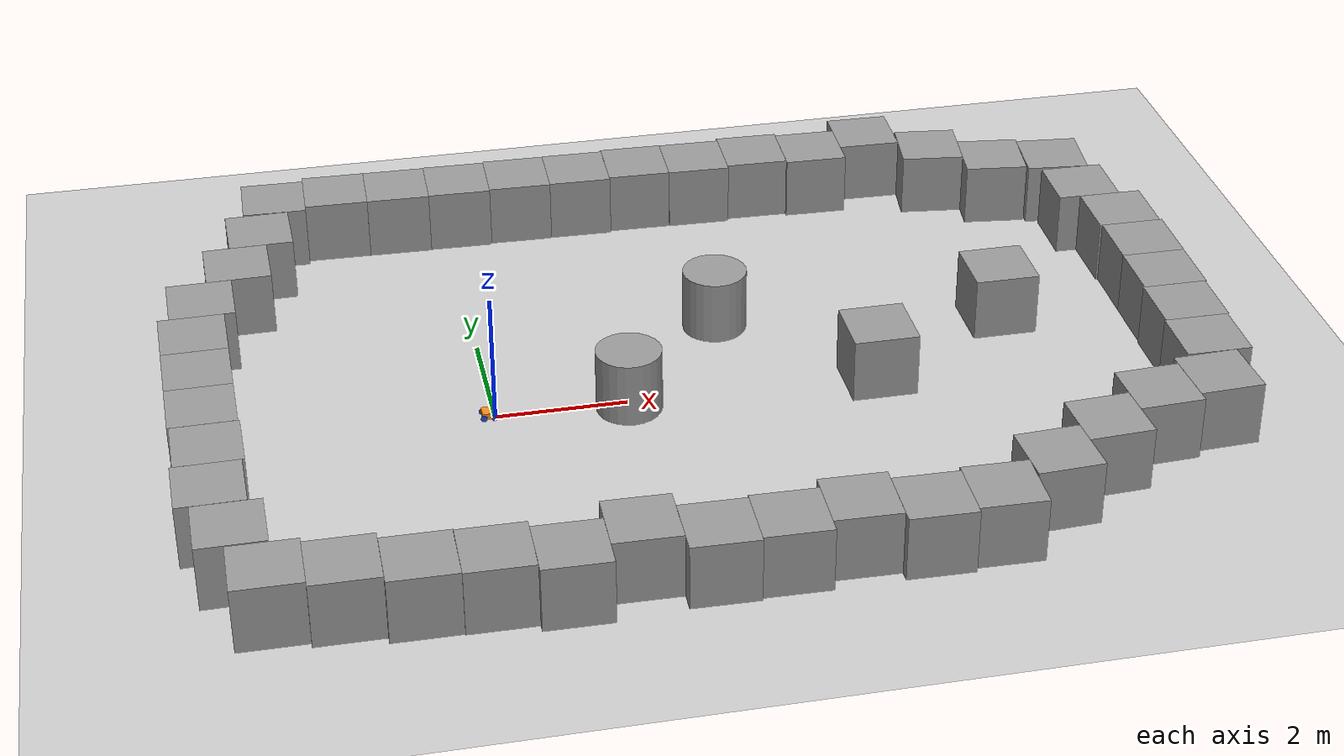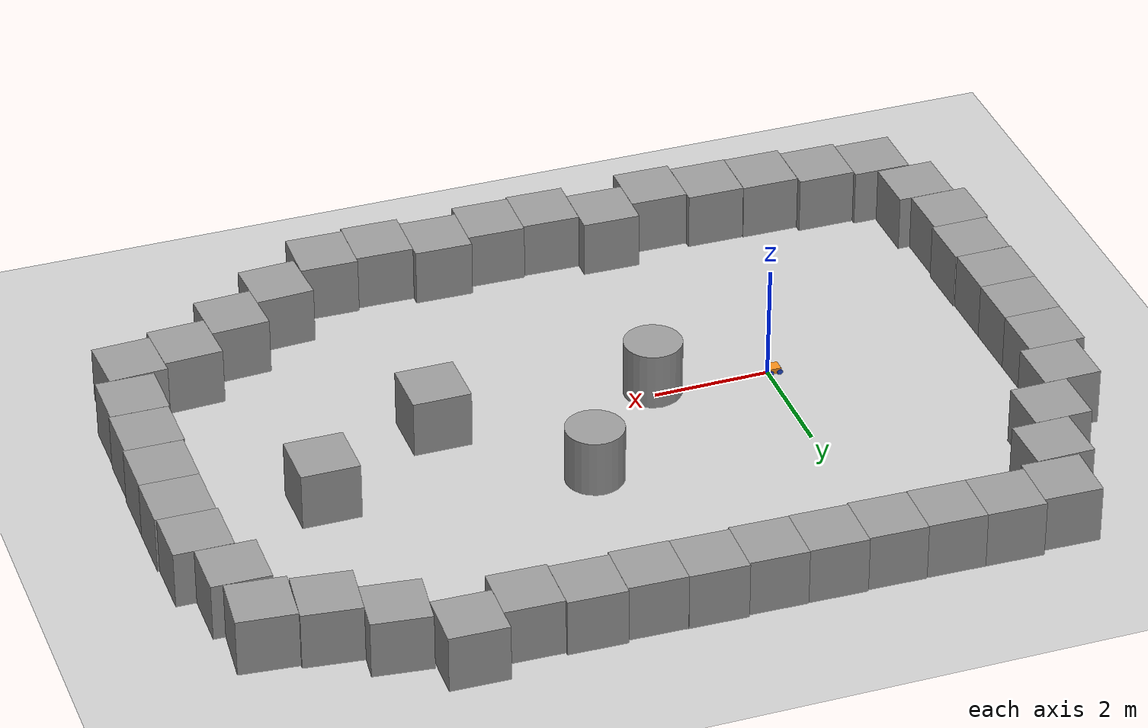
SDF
<sdf version="1.7">
 <world name="default">
  <scene><ambient>0.4 0.4 0.4 1</ambient><background>0.7 0.7 0.7 1</background><shadows>1</shadows></scene>
  <light name="sun" type="directional">
   <pose>0 0 10 0 -0 0</pose>
   <diffuse>0.8 0.8 0.8 1</diffuse>
   <specular>0.2 0.2 0.2 1</specular>
   <attenuation>
    <range>1000</range>
    <constant>0.9</constant>
    <linear>0.01</linear>
    <quadratic>0.001</quadratic>
   </attenuation>
   <direction>-0.5 0.1 -0.9</direction>
   <spot><inner_angle>0</inner_angle><outer_angle>0</outer_angle><falloff>0</falloff></spot>
  </light>
  <model name="ground_plane">
   <static>1</static>
   <link name="link">
    <collision name="collision">
     <geometry><plane><normal>0 0 1</normal><size>100 100</size></plane></geometry>
     <surface>
      <contact><collide_bitmask>65535</collide_bitmask></contact>
      <friction><ode><mu>0.8</mu><mu2>0.6</mu2></ode></friction>
     </surface>
    </collision>
    <visual name="visual">
     <cast_shadows>0</cast_shadows>
     <geometry><plane><normal>0 0 1</normal><size>100 100</size></plane></geometry>
     <material>
      <script><uri>file://media/materials/scripts/gazebo.material</uri><name>Gazebo/Grey</name></script>
     </material>
    </visual>
   </link>
  </model>
  <physics type="ode">
   <real_time_update_rate>1000</real_time_update_rate>
   <max_step_size>0.001</max_step_size>
   <real_time_factor>1</real_time_factor>
   <ode>
    <solver>
     <type>quick</type>
     <iters>150</iters>
     <precon_iters>0</precon_iters>
     <sor>1.4</sor>
     <use_dynamic_moi_rescaling>1</use_dynamic_moi_rescaling>
    </solver>
    <constraints>
     <cfm>1e-05</cfm>
     <erp>0.2</erp>
     <contact_max_correcting_vel>2000</contact_max_correcting_vel>
     <contact_surface_layer>0.01</contact_surface_layer>
    </constraints>
   </ode>
  </physics>
  <gravity>0 0 -9.8</gravity>
  <magnetic_field>6e-06 2.3e-05 -4.2e-05</magnetic_field>
  <atmosphere type="adiabatic"/>
  <audio><device>default</device></audio>
  <spherical_coordinates>
   <surface_model>EARTH_WGS84</surface_model>
   <latitude_deg>0</latitude_deg>
   <longitude_deg>0</longitude_deg>
   <elevation>0</elevation>
   <heading_deg>0</heading_deg>
  </spherical_coordinates>
  <model name="ekf_slam_robot">
   <link name="base_link">
    <inertial>
     <pose>1e-06 0 1e-06 0 -0 0</pose>
     <mass>5.6001</mass>
     <inertia>
      <ixx>0.0233336</ixx>
      <ixy>0</ixy>
      <ixz>-2.7037e-07</ixz>
      <iyy>0.0233339</iyy>
      <iyz>0</iyz>
      <izz>0.0373336</izz>
     </inertia>
    </inertial>
    <collision name="base_link_fixed_joint_lump__base_collision_collision">
     <geometry><box><size>0.2 0.2 0.1</size></box></geometry>
    </collision>
    <collision name="base_link_fixed_joint_lump__lidar_1_collision_collision_1">
     <pose>0.05 0 0.0515 0 -0 0</pose>
     <geometry><cylinder><length>0.003</length><radius>0.005</radius></cylinder></geometry>
    </collision>
    <visual name="base_link_visual">
     <geometry><box><size>0.2 0.2 0.1</size></box></geometry>
     <material>
      <script><name>Gazebo/Orange</name><uri>file://media/materials/scripts/gazebo.material</uri></script>
     </material>
    </visual>
    <visual name="base_link_fixed_joint_lump__lidar_1_visual_visual_1">
     <pose>0.05 0 0.0515 0 -0 0</pose>
     <geometry><cylinder><length>0.003</length><radius>0.005</radius></cylinder></geometry>
     <material>
      <script><name>Gazebo/Blue</name><uri>file://media/materials/scripts/gazebo.material</uri></script>
     </material>
    </visual>
    <sensor name="lidar_1" type="ray">
     <visualize>1</visualize>
     <update_rate>5</update_rate>
     <ray>
      <scan>
       <horizontal>
        <samples>180</samples>
        <resolution>1</resolution>
        <min_angle>-1.5708</min_angle>
        <max_angle>1.5708</max_angle>
       </horizontal>
       <vertical><samples>1</samples><min_angle>0</min_angle><max_angle>0</max_angle></vertical>
      </scan>
      <range><min>0.01</min><max>2</max><resolution>0.01</resolution></range>
     </ray>
     <plugin name="lidar_controller" filename="libgazebo_ros_ray_sensor.so">
      <topic_name>/diff_drive_robot/laser_1/scan</topic_name>
      <frame_name>lidar_1</frame_name>
      <output_type>sensor_msgs/LaserScan</output_type>
     </plugin>
     <pose>0.05 0 0.0515 0 -0 0</pose>
    </sensor>
   </link>
   <joint name="wheel_left_joint" type="revolute">
    <pose relative_to="base_link">0.08 0.105 -0.03 0 -0 0</pose>
    <parent>base_link</parent>
    <child>wheel_left</child>
    <axis>
     <xyz>0 1 0</xyz>
     <limit><effort>100</effort><velocity>50</velocity><lower>-1e+16</lower><upper>1e+16</upper></limit>
     <dynamics><spring_reference>0</spring_reference><spring_stiffness>0</spring_stiffness></dynamics>
    </axis>
   </joint>
   <link name="wheel_left">
    <pose relative_to="wheel_left_joint">0 0 0 0 -0 0</pose>
    <inertial>
     <pose>0 0 0 1.57079 1.57079 3.14159</pose>
     <mass>0.035</mass>
     <inertia>
      <ixx>2.21667e-05</ixx>
      <ixy>0</ixy>
      <ixz>0</ixz>
      <iyy>2.21667e-05</iyy>
      <iyz>0</iyz>
      <izz>4.375e-05</izz>
     </inertia>
    </inertial>
    <collision name="wheel_left_fixed_joint_lump__wheel_collision_collision">
     <pose>0 0 0 1.57079 1.57079 3.14159</pose>
     <geometry><cylinder><length>0.01</length><radius>0.05</radius></cylinder></geometry>
    </collision>
    <visual name="wheel_left_visual_visual">
     <pose>0 0 0 1.57079 1.57079 3.14159</pose>
     <geometry><cylinder><length>0.01</length><radius>0.05</radius></cylinder></geometry>
     <material>
      <script><name>Gazebo/Blue</name><uri>file://media/materials/scripts/gazebo.material</uri></script>
     </material>
    </visual>
   </link>
   <joint name="wheel_left_np_joint" type="revolute">
    <pose relative_to="base_link">-0.08 0.105 -0.03 0 -0 0</pose>
    <parent>base_link</parent>
    <child>wheel_left_np</child>
    <axis>
     <xyz>0 1 0</xyz>
     <limit><effort>100</effort><velocity>50</velocity><lower>-1e+16</lower><upper>1e+16</upper></limit>
     <dynamics><spring_reference>0</spring_reference><spring_stiffness>0</spring_stiffness></dynamics>
    </axis>
   </joint>
   <link name="wheel_left_np">
    <pose relative_to="wheel_left_np_joint">0 0 0 0 -0 0</pose>
    <inertial>
     <pose>0 0 0 1.57079 1.57079 3.14159</pose>
     <mass>0.035</mass>
     <inertia>
      <ixx>2.21667e-05</ixx>
      <ixy>0</ixy>
      <ixz>0</ixz>
      <iyy>2.21667e-05</iyy>
      <iyz>0</iyz>
      <izz>4.375e-05</izz>
     </inertia>
    </inertial>
    <collision name="wheel_left_np_fixed_joint_lump__wheel_collision_collision">
     <pose>0 0 0 1.57079 1.57079 3.14159</pose>
     <geometry><cylinder><length>0.01</length><radius>0.05</radius></cylinder></geometry>
    </collision>
    <visual name="wheel_left_np_visual_visual">
     <pose>0 0 0 1.57079 1.57079 3.14159</pose>
     <geometry><cylinder><length>0.01</length><radius>0.05</radius></cylinder></geometry>
     <material>
      <script><name>Gazebo/Blue</name><uri>file://media/materials/scripts/gazebo.material</uri></script>
     </material>
    </visual>
   </link>
   <joint name="wheel_right_joint" type="revolute">
    <pose relative_to="base_link">0.08 -0.105 -0.03 0 -0 0</pose>
    <parent>base_link</parent>
    <child>wheel_right</child>
    <axis>
     <xyz>0 1 0</xyz>
     <limit><effort>100</effort><velocity>50</velocity><lower>-1e+16</lower><upper>1e+16</upper></limit>
     <dynamics><spring_reference>0</spring_reference><spring_stiffness>0</spring_stiffness></dynamics>
    </axis>
   </joint>
   <link name="wheel_right">
    <pose relative_to="wheel_right_joint">0 0 0 0 -0 0</pose>
    <inertial>
     <pose>0 0 0 1.57079 1.57079 3.14159</pose>
     <mass>0.035</mass>
     <inertia>
      <ixx>2.21667e-05</ixx>
      <ixy>0</ixy>
      <ixz>0</ixz>
      <iyy>2.21667e-05</iyy>
      <iyz>0</iyz>
      <izz>4.375e-05</izz>
     </inertia>
    </inertial>
    <collision name="wheel_right_fixed_joint_lump__wheel_collision_collision">
     <pose>0 0 0 1.57079 1.57079 3.14159</pose>
     <geometry><cylinder><length>0.01</length><radius>0.05</radius></cylinder></geometry>
    </collision>
    <visual name="wheel_right_visual_visual">
     <pose>0 0 0 1.57079 1.57079 3.14159</pose>
     <geometry><cylinder><length>0.01</length><radius>0.05</radius></cylinder></geometry>
     <material>
      <script><name>Gazebo/Blue</name><uri>file://media/materials/scripts/gazebo.material</uri></script>
     </material>
    </visual>
   </link>
   <joint name="wheel_right_np_joint" type="revolute">
    <pose relative_to="base_link">-0.08 -0.105 -0.03 0 -0 0</pose>
    <parent>base_link</parent>
    <child>wheel_right_np</child>
    <axis>
     <xyz>0 1 0</xyz>
     <limit><effort>100</effort><velocity>50</velocity><lower>-1e+16</lower><upper>1e+16</upper></limit>
     <dynamics><spring_reference>0</spring_reference><spring_stiffness>0</spring_stiffness></dynamics>
    </axis>
   </joint>
   <link name="wheel_right_np">
    <pose relative_to="wheel_right_np_joint">0 0 0 0 -0 0</pose>
    <inertial>
     <pose>0 0 0 1.57079 1.57079 3.14159</pose>
     <mass>0.035</mass>
     <inertia>
      <ixx>2.21667e-05</ixx>
      <ixy>0</ixy>
      <ixz>0</ixz>
      <iyy>2.21667e-05</iyy>
      <iyz>0</iyz>
      <izz>4.375e-05</izz>
     </inertia>
    </inertial>
    <collision name="wheel_right_np_fixed_joint_lump__wheel_collision_collision">
     <pose>0 0 0 1.57079 1.57079 3.14159</pose>
     <geometry><cylinder><length>0.01</length><radius>0.05</radius></cylinder></geometry>
    </collision>
    <visual name="wheel_right_np_visual_visual">
     <pose>0 0 0 1.57079 1.57079 3.14159</pose>
     <geometry><cylinder><length>0.01</length><radius>0.05</radius></cylinder></geometry>
     <material>
      <script><name>Gazebo/Blue</name><uri>file://media/materials/scripts/gazebo.material</uri></script>
     </material>
    </visual>
   </link>
   <static>0</static>
   <plugin name="differential_drive_controller" filename="libgazebo_ros_diff_drive.so">
    <legacy_mode>0</legacy_mode>
    <always_on>1</always_on>
    <update_rate>30</update_rate>
    <left_joint>wheel_left_joint</left_joint>
    <right_joint>wheel_right_joint</right_joint>
    <wheel_separation>0.21</wheel_separation>
    <wheel_diameter>0.1</wheel_diameter>
    <wheel_torque>100</wheel_torque>
    <command_topic>cmd_vel</command_topic>
    <odometry_topic>odom</odometry_topic>
    <odometry_frame>odom</odometry_frame>
    <robot_base_frame>base_link</robot_base_frame>
   </plugin>
   <pose>-0.09566 0.011739 0.080003 0 -0 0.009276</pose>
  </model>
  <model name="unit_cylinder">
   <pose>2.00389 -0.137042 0.5 0 -0 0</pose>
   <link name="link">
    <inertial>
     <mass>1</mass>
     <inertia><ixx>0.145833</ixx><ixy>0</ixy><ixz>0</ixz><iyy>0.145833</iyy><iyz>0</iyz><izz>0.125</izz></inertia>
    </inertial>
    <collision name="collision">
     <geometry><cylinder><radius>0.5</radius><length>1</length></cylinder></geometry>
    </collision>
    <visual name="visual">
     <geometry><cylinder><radius>0.5</radius><length>1</length></cylinder></geometry>
     <material>
      <script><name>Gazebo/Grey</name><uri>file://media/materials/scripts/gazebo.material</uri></script>
     </material>
    </visual>
   </link>
  </model>
  <model name="unit_cylinder_0">
   <pose>3.74474 1.90178 0.5 0 -0 0</pose>
   <link name="link">
    <inertial>
     <mass>1</mass>
     <inertia><ixx>0.145833</ixx><ixy>0</ixy><ixz>0</ixz><iyy>0.145833</iyy><iyz>0</iyz><izz>0.125</izz></inertia>
    </inertial>
    <collision name="collision">
     <geometry><cylinder><radius>0.5</radius><length>1</length></cylinder></geometry>
    </collision>
    <visual name="visual">
     <geometry><cylinder><radius>0.5</radius><length>1</length></cylinder></geometry>
     <material>
      <script><name>Gazebo/Grey</name><uri>file://media/materials/scripts/gazebo.material</uri></script>
     </material>
    </visual>
   </link>
  </model>
  <model name="unit_box">
   <pose>5.82216 -0.163796 0.5 0 -0 0</pose>
   <link name="link">
    <inertial>
     <mass>1</mass>
     <inertia>
      <ixx>0.166667</ixx>
      <ixy>0</ixy>
      <ixz>0</ixz>
      <iyy>0.166667</iyy>
      <iyz>0</iyz>
      <izz>0.166667</izz>
     </inertia>
    </inertial>
    <collision name="collision"><geometry><box><size>1 1 1</size></box></geometry></collision>
    <visual name="visual">
     <geometry><box><size>1 1 1</size></box></geometry>
     <material>
      <script><name>Gazebo/Grey</name><uri>file://media/materials/scripts/gazebo.material</uri></script>
     </material>
    </visual>
   </link>
  </model>
  <model name="unit_box_0">
   <pose>8.12472 1.18243 0.5 0 -0 0</pose>
   <link name="link">
    <inertial>
     <mass>1</mass>
     <inertia>
      <ixx>0.166667</ixx>
      <ixy>0</ixy>
      <ixz>0</ixz>
      <iyy>0.166667</iyy>
      <iyz>0</iyz>
      <izz>0.166667</izz>
     </inertia>
    </inertial>
    <collision name="collision"><geometry><box><size>1 1 1</size></box></geometry></collision>
    <visual name="visual">
     <geometry><box><size>1 1 1</size></box></geometry>
     <material>
      <script><name>Gazebo/Grey</name><uri>file://media/materials/scripts/gazebo.material</uri></script>
     </material>
    </visual>
   </link>
  </model>
  <model name="unit_box_1">
   <pose>7.21824 6.01141 0.5 0 0 -0.025418</pose>
   <link name="link">
    <inertial>
     <mass>1</mass>
     <inertia>
      <ixx>0.166667</ixx>
      <ixy>0</ixy>
      <ixz>0</ixz>
      <iyy>0.166667</iyy>
      <iyz>0</iyz>
      <izz>0.166667</izz>
     </inertia>
    </inertial>
    <collision name="collision"><geometry><box><size>1 1 1</size></box></geometry></collision>
    <visual name="visual">
     <geometry><box><size>1 1 1</size></box></geometry>
     <material>
      <script><name>Gazebo/Grey</name><uri>file://media/materials/scripts/gazebo.material</uri></script>
     </material>
    </visual>
   </link>
  </model>
  <model name="unit_box_2">
   <pose>6.20887 5.66023 0.5 0 -0 -0.025624</pose>
   <link name="link">
    <inertial>
     <mass>1</mass>
     <inertia>
      <ixx>0.166667</ixx>
      <ixy>0</ixy>
      <ixz>0</ixz>
      <iyy>0.166667</iyy>
      <iyz>0</iyz>
      <izz>0.166667</izz>
     </inertia>
    </inertial>
    <collision name="collision"><geometry><box><size>1 1 1</size></box></geometry></collision>
    <visual name="visual">
     <geometry><box><size>1 1 1</size></box></geometry>
     <material>
      <script><name>Gazebo/Grey</name><uri>file://media/materials/scripts/gazebo.material</uri></script>
     </material>
    </visual>
   </link>
  </model>
  <model name="unit_box_3">
   <pose>5.21009 5.74576 0.5 0 -0 -0.026887</pose>
   <link name="link">
    <inertial>
     <mass>1</mass>
     <inertia>
      <ixx>0.166667</ixx>
      <ixy>0</ixy>
      <ixz>0</ixz>
      <iyy>0.166667</iyy>
      <iyz>0</iyz>
      <izz>0.166667</izz>
     </inertia>
    </inertial>
    <collision name="collision"><geometry><box><size>1 1 1</size></box></geometry></collision>
    <visual name="visual">
     <geometry><box><size>1 1 1</size></box></geometry>
     <material>
      <script><name>Gazebo/Grey</name><uri>file://media/materials/scripts/gazebo.material</uri></script>
     </material>
    </visual>
   </link>
  </model>
  <model name="unit_box_4">
   <pose>4.20838 5.70516 0.5 0 0 -0.026309</pose>
   <link name="link">
    <inertial>
     <mass>1</mass>
     <inertia>
      <ixx>0.166667</ixx>
      <ixy>0</ixy>
      <ixz>0</ixz>
      <iyy>0.166667</iyy>
      <iyz>0</iyz>
      <izz>0.166667</izz>
     </inertia>
    </inertial>
    <collision name="collision"><geometry><box><size>1 1 1</size></box></geometry></collision>
    <visual name="visual">
     <geometry><box><size>1 1 1</size></box></geometry>
     <material>
      <script><name>Gazebo/Grey</name><uri>file://media/materials/scripts/gazebo.material</uri></script>
     </material>
    </visual>
   </link>
  </model>
  <model name="unit_box_5">
   <pose>3.20886 5.73912 0.5 0 -0 -0.026187</pose>
   <link name="link">
    <inertial>
     <mass>1</mass>
     <inertia>
      <ixx>0.166667</ixx>
      <ixy>0</ixy>
      <ixz>0</ixz>
      <iyy>0.166667</iyy>
      <iyz>0</iyz>
      <izz>0.166667</izz>
     </inertia>
    </inertial>
    <collision name="collision"><geometry><box><size>1 1 1</size></box></geometry></collision>
    <visual name="visual">
     <geometry><box><size>1 1 1</size></box></geometry>
     <material>
      <script><name>Gazebo/Grey</name><uri>file://media/materials/scripts/gazebo.material</uri></script>
     </material>
    </visual>
   </link>
  </model>
  <model name="unit_box_6">
   <pose>2.2079 5.71884 0.5 0 0 -0.026004</pose>
   <link name="link">
    <inertial>
     <mass>1</mass>
     <inertia>
      <ixx>0.166667</ixx>
      <ixy>0</ixy>
      <ixz>0</ixz>
      <iyy>0.166667</iyy>
      <iyz>0</iyz>
      <izz>0.166667</izz>
     </inertia>
    </inertial>
    <collision name="collision"><geometry><box><size>1 1 1</size></box></geometry></collision>
    <visual name="visual">
     <geometry><box><size>1 1 1</size></box></geometry>
     <material>
      <script><name>Gazebo/Grey</name><uri>file://media/materials/scripts/gazebo.material</uri></script>
     </material>
    </visual>
   </link>
  </model>
  <model name="unit_box_7">
   <pose>1.20794 5.73331 0.5 0 -0 -0.026004</pose>
   <link name="link">
    <inertial>
     <mass>1</mass>
     <inertia>
      <ixx>0.166667</ixx>
      <ixy>0</ixy>
      <ixz>0</ixz>
      <iyy>0.166667</iyy>
      <iyz>0</iyz>
      <izz>0.166667</izz>
     </inertia>
    </inertial>
    <collision name="collision"><geometry><box><size>1 1 1</size></box></geometry></collision>
    <visual name="visual">
     <geometry><box><size>1 1 1</size></box></geometry>
     <material>
      <script><name>Gazebo/Grey</name><uri>file://media/materials/scripts/gazebo.material</uri></script>
     </material>
    </visual>
   </link>
  </model>
  <model name="unit_box_8">
   <pose>0.207418 5.72644 0.5 0 -0 -0.026003</pose>
   <link name="link">
    <inertial>
     <mass>1</mass>
     <inertia>
      <ixx>0.166667</ixx>
      <ixy>0</ixy>
      <ixz>0</ixz>
      <iyy>0.166667</iyy>
      <iyz>0</iyz>
      <izz>0.166667</izz>
     </inertia>
    </inertial>
    <collision name="collision"><geometry><box><size>1 1 1</size></box></geometry></collision>
    <visual name="visual">
     <geometry><box><size>1 1 1</size></box></geometry>
     <material>
      <script><name>Gazebo/Grey</name><uri>file://media/materials/scripts/gazebo.material</uri></script>
     </material>
    </visual>
   </link>
  </model>
  <model name="unit_box_9">
   <pose>-0.79265 5.73904 0.5 0 0 -0.026107</pose>
   <link name="link">
    <inertial>
     <mass>1</mass>
     <inertia>
      <ixx>0.166667</ixx>
      <ixy>0</ixy>
      <ixz>0</ixz>
      <iyy>0.166667</iyy>
      <iyz>0</iyz>
      <izz>0.166667</izz>
     </inertia>
    </inertial>
    <collision name="collision"><geometry><box><size>1 1 1</size></box></geometry></collision>
    <visual name="visual">
     <geometry><box><size>1 1 1</size></box></geometry>
     <material>
      <script><name>Gazebo/Grey</name><uri>file://media/materials/scripts/gazebo.material</uri></script>
     </material>
    </visual>
   </link>
  </model>
  <model name="unit_box_10">
   <pose>-1.79233 5.76509 0.5 -0 -0 -0.026135</pose>
   <link name="link">
    <inertial>
     <mass>1</mass>
     <inertia>
      <ixx>0.166667</ixx>
      <ixy>0</ixy>
      <ixz>0</ixz>
      <iyy>0.166667</iyy>
      <iyz>0</iyz>
      <izz>0.166667</izz>
     </inertia>
    </inertial>
    <collision name="collision"><geometry><box><size>1 1 1</size></box></geometry></collision>
    <visual name="visual">
     <geometry><box><size>1 1 1</size></box></geometry>
     <material>
      <script><name>Gazebo/Grey</name><uri>file://media/materials/scripts/gazebo.material</uri></script>
     </material>
    </visual>
   </link>
  </model>
  <model name="unit_box_11">
   <pose>-2.79481 5.68365 0.5 0 0 -0.026136</pose>
   <link name="link">
    <inertial>
     <mass>1</mass>
     <inertia>
      <ixx>0.166667</ixx>
      <ixy>0</ixy>
      <ixz>0</ixz>
      <iyy>0.166667</iyy>
      <iyz>0</iyz>
      <izz>0.166667</izz>
     </inertia>
    </inertial>
    <collision name="collision"><geometry><box><size>1 1 1</size></box></geometry></collision>
    <visual name="visual">
     <geometry><box><size>1 1 1</size></box></geometry>
     <material>
      <script><name>Gazebo/Grey</name><uri>file://media/materials/scripts/gazebo.material</uri></script>
     </material>
    </visual>
   </link>
  </model>
  <model name="unit_box_12">
   <pose>-3.09286 4.66512 0.5 0 -0 0.013309</pose>
   <link name="link">
    <inertial>
     <mass>1</mass>
     <inertia>
      <ixx>0.166667</ixx>
      <ixy>0</ixy>
      <ixz>0</ixz>
      <iyy>0.166667</iyy>
      <iyz>0</iyz>
      <izz>0.166667</izz>
     </inertia>
    </inertial>
    <collision name="collision"><geometry><box><size>1 1 1</size></box></geometry></collision>
    <visual name="visual">
     <geometry><box><size>1 1 1</size></box></geometry>
     <material>
      <script><name>Gazebo/Grey</name><uri>file://media/materials/scripts/gazebo.material</uri></script>
     </material>
    </visual>
   </link>
  </model>
  <model name="unit_box_13">
   <pose>-3.50189 3.65867 0.5 0 -0 0.010765</pose>
   <link name="link">
    <inertial>
     <mass>1</mass>
     <inertia>
      <ixx>0.166667</ixx>
      <ixy>0</ixy>
      <ixz>0</ixz>
      <iyy>0.166667</iyy>
      <iyz>0</iyz>
      <izz>0.166667</izz>
     </inertia>
    </inertial>
    <collision name="collision"><geometry><box><size>1 1 1</size></box></geometry></collision>
    <visual name="visual">
     <geometry><box><size>1 1 1</size></box></geometry>
     <material>
      <script><name>Gazebo/Grey</name><uri>file://media/materials/scripts/gazebo.material</uri></script>
     </material>
    </visual>
   </link>
  </model>
  <model name="unit_box_14">
   <pose>-4.11132 2.65121 0.5 0 -0 0.008951</pose>
   <link name="link">
    <inertial>
     <mass>1</mass>
     <inertia>
      <ixx>0.166667</ixx>
      <ixy>0</ixy>
      <ixz>0</ixz>
      <iyy>0.166667</iyy>
      <iyz>0</iyz>
      <izz>0.166667</izz>
     </inertia>
    </inertial>
    <collision name="collision"><geometry><box><size>1 1 1</size></box></geometry></collision>
    <visual name="visual">
     <geometry><box><size>1 1 1</size></box></geometry>
     <material>
      <script><name>Gazebo/Grey</name><uri>file://media/materials/scripts/gazebo.material</uri></script>
     </material>
    </visual>
   </link>
  </model>
  <model name="unit_box_15">
   <pose>8.18723 5.31771 0.5 0 0 -0.119398</pose>
   <link name="link">
    <inertial>
     <mass>1</mass>
     <inertia>
      <ixx>0.166667</ixx>
      <ixy>0</ixy>
      <ixz>0</ixz>
      <iyy>0.166667</iyy>
      <iyz>0</iyz>
      <izz>0.166667</izz>
     </inertia>
    </inertial>
    <collision name="collision"><geometry><box><size>1 1 1</size></box></geometry></collision>
    <visual name="visual">
     <geometry><box><size>1 1 1</size></box></geometry>
     <material>
      <script><name>Gazebo/Grey</name><uri>file://media/materials/scripts/gazebo.material</uri></script>
     </material>
    </visual>
   </link>
  </model>
  <model name="unit_box_16">
   <pose>9.12691 4.75514 0.5 0 0 -0.119395</pose>
   <link name="link">
    <inertial>
     <mass>1</mass>
     <inertia>
      <ixx>0.166667</ixx>
      <ixy>0</ixy>
      <ixz>0</ixz>
      <iyy>0.166667</iyy>
      <iyz>0</iyz>
      <izz>0.166667</izz>
     </inertia>
    </inertial>
    <collision name="collision"><geometry><box><size>1 1 1</size></box></geometry></collision>
    <visual name="visual">
     <geometry><box><size>1 1 1</size></box></geometry>
     <material>
      <script><name>Gazebo/Grey</name><uri>file://media/materials/scripts/gazebo.material</uri></script>
     </material>
    </visual>
   </link>
  </model>
  <model name="unit_box_17">
   <pose>-4.27243 1.64968 0.5 0 -0 0.009008</pose>
   <link name="link">
    <inertial>
     <mass>1</mass>
     <inertia>
      <ixx>0.166667</ixx>
      <ixy>0</ixy>
      <ixz>0</ixz>
      <iyy>0.166667</iyy>
      <iyz>0</iyz>
      <izz>0.166667</izz>
     </inertia>
    </inertial>
    <collision name="collision"><geometry><box><size>1 1 1</size></box></geometry></collision>
    <visual name="visual">
     <geometry><box><size>1 1 1</size></box></geometry>
     <material>
      <script><name>Gazebo/Grey</name><uri>file://media/materials/scripts/gazebo.material</uri></script>
     </material>
    </visual>
   </link>
  </model>
  <model name="unit_box_18">
   <pose>-4.264 0.649504 0.5 0 -0 0.009392</pose>
   <link name="link">
    <inertial>
     <mass>1</mass>
     <inertia>
      <ixx>0.166667</ixx>
      <ixy>0</ixy>
      <ixz>0</ixz>
      <iyy>0.166667</iyy>
      <iyz>0</iyz>
      <izz>0.166667</izz>
     </inertia>
    </inertial>
    <collision name="collision"><geometry><box><size>1 1 1</size></box></geometry></collision>
    <visual name="visual">
     <geometry><box><size>1 1 1</size></box></geometry>
     <material>
      <script><name>Gazebo/Grey</name><uri>file://media/materials/scripts/gazebo.material</uri></script>
     </material>
    </visual>
   </link>
  </model>
  <model name="unit_box_19">
   <pose>-4.25545 -0.35046 0.5 0 -0 0.009392</pose>
   <link name="link">
    <inertial>
     <mass>1</mass>
     <inertia>
      <ixx>0.166667</ixx>
      <ixy>0</ixy>
      <ixz>0</ixz>
      <iyy>0.166667</iyy>
      <iyz>0</iyz>
      <izz>0.166667</izz>
     </inertia>
    </inertial>
    <collision name="collision"><geometry><box><size>1 1 1</size></box></geometry></collision>
    <visual name="visual">
     <geometry><box><size>1 1 1</size></box></geometry>
     <material>
      <script><name>Gazebo/Grey</name><uri>file://media/materials/scripts/gazebo.material</uri></script>
     </material>
    </visual>
   </link>
  </model>
  <model name="unit_box_20">
   <pose>-4.22157 -1.35105 0.5 0 -0 0.011044</pose>
   <link name="link">
    <inertial>
     <mass>1</mass>
     <inertia>
      <ixx>0.166667</ixx>
      <ixy>0</ixy>
      <ixz>0</ixz>
      <iyy>0.166667</iyy>
      <iyz>0</iyz>
      <izz>0.166667</izz>
     </inertia>
    </inertial>
    <collision name="collision"><geometry><box><size>1 1 1</size></box></geometry></collision>
    <visual name="visual">
     <geometry><box><size>1 1 1</size></box></geometry>
     <material>
      <script><name>Gazebo/Grey</name><uri>file://media/materials/scripts/gazebo.material</uri></script>
     </material>
    </visual>
   </link>
  </model>
  <model name="unit_box_21">
   <pose>-4.25056 -2.35166 0.5 0 -0 0.011192</pose>
   <link name="link">
    <inertial>
     <mass>1</mass>
     <inertia>
      <ixx>0.166667</ixx>
      <ixy>0</ixy>
      <ixz>0</ixz>
      <iyy>0.166667</iyy>
      <iyz>0</iyz>
      <izz>0.166667</izz>
     </inertia>
    </inertial>
    <collision name="collision"><geometry><box><size>1 1 1</size></box></geometry></collision>
    <visual name="visual">
     <geometry><box><size>1 1 1</size></box></geometry>
     <material>
      <script><name>Gazebo/Grey</name><uri>file://media/materials/scripts/gazebo.material</uri></script>
     </material>
    </visual>
   </link>
  </model>
  <model name="unit_box_22">
   <pose>-4.03292 -3.35456 0.5 0 -0 0.007786</pose>
   <link name="link">
    <inertial>
     <mass>1</mass>
     <inertia>
      <ixx>0.166667</ixx>
      <ixy>0</ixy>
      <ixz>0</ixz>
      <iyy>0.166667</iyy>
      <iyz>0</iyz>
      <izz>0.166667</izz>
     </inertia>
    </inertial>
    <collision name="collision"><geometry><box><size>1 1 1</size></box></geometry></collision>
    <visual name="visual">
     <geometry><box><size>1 1 1</size></box></geometry>
     <material>
      <script><name>Gazebo/Grey</name><uri>file://media/materials/scripts/gazebo.material</uri></script>
     </material>
    </visual>
   </link>
  </model>
  <model name="unit_box_23">
   <pose>-3.62401 -4.37716 0.5 -0 -0 -0.003931</pose>
   <link name="link">
    <inertial>
     <mass>1</mass>
     <inertia>
      <ixx>0.166667</ixx>
      <ixy>0</ixy>
      <ixz>0</ixz>
      <iyy>0.166667</iyy>
      <iyz>0</iyz>
      <izz>0.166667</izz>
     </inertia>
    </inertial>
    <collision name="collision"><geometry><box><size>1 1 1</size></box></geometry></collision>
    <visual name="visual">
     <geometry><box><size>1 1 1</size></box></geometry>
     <material>
      <script><name>Gazebo/Grey</name><uri>file://media/materials/scripts/gazebo.material</uri></script>
     </material>
    </visual>
   </link>
  </model>
  <model name="unit_box_24">
   <pose>-2.62433 -4.47019 0.5 -0 -0 -0.004008</pose>
   <link name="link">
    <inertial>
     <mass>1</mass>
     <inertia>
      <ixx>0.166667</ixx>
      <ixy>0</ixy>
      <ixz>0</ixz>
      <iyy>0.166667</iyy>
      <iyz>0</iyz>
      <izz>0.166667</izz>
     </inertia>
    </inertial>
    <collision name="collision"><geometry><box><size>1 1 1</size></box></geometry></collision>
    <visual name="visual">
     <geometry><box><size>1 1 1</size></box></geometry>
     <material>
      <script><name>Gazebo/Grey</name><uri>file://media/materials/scripts/gazebo.material</uri></script>
     </material>
    </visual>
   </link>
  </model>
  <model name="unit_box_25">
   <pose>-1.62348 -4.59714 0.5 0 0 -0.007527</pose>
   <link name="link">
    <inertial>
     <mass>1</mass>
     <inertia>
      <ixx>0.166667</ixx>
      <ixy>0</ixy>
      <ixz>0</ixz>
      <iyy>0.166667</iyy>
      <iyz>0</iyz>
      <izz>0.166667</izz>
     </inertia>
    </inertial>
    <collision name="collision"><geometry><box><size>1 1 1</size></box></geometry></collision>
    <visual name="visual">
     <geometry><box><size>1 1 1</size></box></geometry>
     <material>
      <script><name>Gazebo/Grey</name><uri>file://media/materials/scripts/gazebo.material</uri></script>
     </material>
    </visual>
   </link>
  </model>
  <model name="unit_box_26">
   <pose>-0.621584 -4.6231 0.5 0 0 -0.011557</pose>
   <link name="link">
    <inertial>
     <mass>1</mass>
     <inertia>
      <ixx>0.166667</ixx>
      <ixy>0</ixy>
      <ixz>0</ixz>
      <iyy>0.166667</iyy>
      <iyz>0</iyz>
      <izz>0.166667</izz>
     </inertia>
    </inertial>
    <collision name="collision"><geometry><box><size>1 1 1</size></box></geometry></collision>
    <visual name="visual">
     <geometry><box><size>1 1 1</size></box></geometry>
     <material>
      <script><name>Gazebo/Grey</name><uri>file://media/materials/scripts/gazebo.material</uri></script>
     </material>
    </visual>
   </link>
  </model>
  <model name="unit_box_27">
   <pose>0.377699 -4.75985 0.5 0 -0 -0.013609</pose>
   <link name="link">
    <inertial>
     <mass>1</mass>
     <inertia>
      <ixx>0.166667</ixx>
      <ixy>0</ixy>
      <ixz>0</ixz>
      <iyy>0.166667</iyy>
      <iyz>0</iyz>
      <izz>0.166667</izz>
     </inertia>
    </inertial>
    <collision name="collision"><geometry><box><size>1 1 1</size></box></geometry></collision>
    <visual name="visual">
     <geometry><box><size>1 1 1</size></box></geometry>
     <material>
      <script><name>Gazebo/Grey</name><uri>file://media/materials/scripts/gazebo.material</uri></script>
     </material>
    </visual>
   </link>
  </model>
  <model name="unit_box_28">
   <pose>1.38537 -4.37908 0.5 0 -0 -0.018421</pose>
   <link name="link">
    <inertial>
     <mass>1</mass>
     <inertia>
      <ixx>0.166667</ixx>
      <ixy>0</ixy>
      <ixz>0</ixz>
      <iyy>0.166667</iyy>
      <iyz>0</iyz>
      <izz>0.166667</izz>
     </inertia>
    </inertial>
    <collision name="collision"><geometry><box><size>1 1 1</size></box></geometry></collision>
    <visual name="visual">
     <geometry><box><size>1 1 1</size></box></geometry>
     <material>
      <script><name>Gazebo/Grey</name><uri>file://media/materials/scripts/gazebo.material</uri></script>
     </material>
    </visual>
   </link>
  </model>
  <model name="unit_box_29">
   <pose>2.38065 -4.68832 0.5 0 0 -0.022146</pose>
   <link name="link">
    <inertial>
     <mass>1</mass>
     <inertia>
      <ixx>0.166667</ixx>
      <ixy>0</ixy>
      <ixz>0</ixz>
      <iyy>0.166667</iyy>
      <iyz>0</iyz>
      <izz>0.166667</izz>
     </inertia>
    </inertial>
    <collision name="collision"><geometry><box><size>1 1 1</size></box></geometry></collision>
    <visual name="visual">
     <geometry><box><size>1 1 1</size></box></geometry>
     <material>
      <script><name>Gazebo/Grey</name><uri>file://media/materials/scripts/gazebo.material</uri></script>
     </material>
    </visual>
   </link>
  </model>
  <model name="unit_box_30">
   <pose>3.38146 -4.6631 0.5 0 0 -0.022131</pose>
   <link name="link">
    <inertial>
     <mass>1</mass>
     <inertia>
      <ixx>0.166667</ixx>
      <ixy>0</ixy>
      <ixz>0</ixz>
      <iyy>0.166667</iyy>
      <iyz>0</iyz>
      <izz>0.166667</izz>
     </inertia>
    </inertial>
    <collision name="collision"><geometry><box><size>1 1 1</size></box></geometry></collision>
    <visual name="visual">
     <geometry><box><size>1 1 1</size></box></geometry>
     <material>
      <script><name>Gazebo/Grey</name><uri>file://media/materials/scripts/gazebo.material</uri></script>
     </material>
    </visual>
   </link>
  </model>
  <model name="unit_box_31">
   <pose>4.38575 -4.48471 0.5 0 0 -0.022317</pose>
   <link name="link">
    <inertial>
     <mass>1</mass>
     <inertia>
      <ixx>0.166667</ixx>
      <ixy>0</ixy>
      <ixz>0</ixz>
      <iyy>0.166667</iyy>
      <iyz>0</iyz>
      <izz>0.166667</izz>
     </inertia>
    </inertial>
    <collision name="collision"><geometry><box><size>1 1 1</size></box></geometry></collision>
    <visual name="visual">
     <geometry><box><size>1 1 1</size></box></geometry>
     <material>
      <script><name>Gazebo/Grey</name><uri>file://media/materials/scripts/gazebo.material</uri></script>
     </material>
    </visual>
   </link>
  </model>
  <model name="unit_box_32">
   <pose>5.3821 -4.66719 0.5 0 0 -0.022467</pose>
   <link name="link">
    <inertial>
     <mass>1</mass>
     <inertia>
      <ixx>0.166667</ixx>
      <ixy>0</ixy>
      <ixz>0</ixz>
      <iyy>0.166667</iyy>
      <iyz>0</iyz>
      <izz>0.166667</izz>
     </inertia>
    </inertial>
    <collision name="collision"><geometry><box><size>1 1 1</size></box></geometry></collision>
    <visual name="visual">
     <geometry><box><size>1 1 1</size></box></geometry>
     <material>
      <script><name>Gazebo/Grey</name><uri>file://media/materials/scripts/gazebo.material</uri></script>
     </material>
    </visual>
   </link>
  </model>
  <model name="unit_box_33">
   <pose>10.1237 4.57722 0.5 -0 -0 -0.097295</pose>
   <link name="link">
    <inertial>
     <mass>1</mass>
     <inertia>
      <ixx>0.166667</ixx>
      <ixy>0</ixy>
      <ixz>0</ixz>
      <iyy>0.166667</iyy>
      <iyz>0</iyz>
      <izz>0.166667</izz>
     </inertia>
    </inertial>
    <collision name="collision"><geometry><box><size>1 1 1</size></box></geometry></collision>
    <visual name="visual">
     <geometry><box><size>1 1 1</size></box></geometry>
     <material>
      <script><name>Gazebo/Grey</name><uri>file://media/materials/scripts/gazebo.material</uri></script>
     </material>
    </visual>
   </link>
  </model>
  <model name="unit_box_34">
   <pose>10.2654 3.53579 0.5 0 0 -0.015737</pose>
   <link name="link">
    <inertial>
     <mass>1</mass>
     <inertia>
      <ixx>0.166667</ixx>
      <ixy>0</ixy>
      <ixz>0</ixz>
      <iyy>0.166667</iyy>
      <iyz>0</iyz>
      <izz>0.166667</izz>
     </inertia>
    </inertial>
    <collision name="collision"><geometry><box><size>1 1 1</size></box></geometry></collision>
    <visual name="visual">
     <geometry><box><size>1 1 1</size></box></geometry>
     <material>
      <script><name>Gazebo/Grey</name><uri>file://media/materials/scripts/gazebo.material</uri></script>
     </material>
    </visual>
   </link>
  </model>
  <model name="unit_box_35">
   <pose>10.5925 2.52934 0.5 0 0 -0.008428</pose>
   <link name="link">
    <inertial>
     <mass>1</mass>
     <inertia>
      <ixx>0.166667</ixx>
      <ixy>0</ixy>
      <ixz>0</ixz>
      <iyy>0.166667</iyy>
      <iyz>0</iyz>
      <izz>0.166667</izz>
     </inertia>
    </inertial>
    <collision name="collision"><geometry><box><size>1 1 1</size></box></geometry></collision>
    <visual name="visual">
     <geometry><box><size>1 1 1</size></box></geometry>
     <material>
      <script><name>Gazebo/Grey</name><uri>file://media/materials/scripts/gazebo.material</uri></script>
     </material>
    </visual>
   </link>
  </model>
  <model name="unit_box_36">
   <pose>10.6162 1.52909 0.5 0 -0 -0.008388</pose>
   <link name="link">
    <inertial>
     <mass>1</mass>
     <inertia>
      <ixx>0.166667</ixx>
      <ixy>0</ixy>
      <ixz>0</ixz>
      <iyy>0.166667</iyy>
      <iyz>0</iyz>
      <izz>0.166667</izz>
     </inertia>
    </inertial>
    <collision name="collision"><geometry><box><size>1 1 1</size></box></geometry></collision>
    <visual name="visual">
     <geometry><box><size>1 1 1</size></box></geometry>
     <material>
      <script><name>Gazebo/Grey</name><uri>file://media/materials/scripts/gazebo.material</uri></script>
     </material>
    </visual>
   </link>
  </model>
  <model name="unit_box_37">
   <pose>10.6048 0.529143 0.5 -0 -0 -0.008374</pose>
   <link name="link">
    <inertial>
     <mass>1</mass>
     <inertia>
      <ixx>0.166667</ixx>
      <ixy>0</ixy>
      <ixz>0</ixz>
      <iyy>0.166667</iyy>
      <iyz>0</iyz>
      <izz>0.166667</izz>
     </inertia>
    </inertial>
    <collision name="collision"><geometry><box><size>1 1 1</size></box></geometry></collision>
    <visual name="visual">
     <geometry><box><size>1 1 1</size></box></geometry>
     <material>
      <script><name>Gazebo/Grey</name><uri>file://media/materials/scripts/gazebo.material</uri></script>
     </material>
    </visual>
   </link>
  </model>
  <model name="unit_box_38">
   <pose>10.5737 -0.471021 0.5 0 0 -0.007594</pose>
   <link name="link">
    <inertial>
     <mass>1</mass>
     <inertia>
      <ixx>0.166667</ixx>
      <ixy>0</ixy>
      <ixz>0</ixz>
      <iyy>0.166667</iyy>
      <iyz>0</iyz>
      <izz>0.166667</izz>
     </inertia>
    </inertial>
    <collision name="collision"><geometry><box><size>1 1 1</size></box></geometry></collision>
    <visual name="visual">
     <geometry><box><size>1 1 1</size></box></geometry>
     <material>
      <script><name>Gazebo/Grey</name><uri>file://media/materials/scripts/gazebo.material</uri></script>
     </material>
    </visual>
   </link>
  </model>
  <model name="unit_box_39">
   <pose>10.5443 -1.47139 0.5 0 0 -0.006466</pose>
   <link name="link">
    <inertial>
     <mass>1</mass>
     <inertia>
      <ixx>0.166667</ixx>
      <ixy>0</ixy>
      <ixz>0</ixz>
      <iyy>0.166667</iyy>
      <iyz>0</iyz>
      <izz>0.166667</izz>
     </inertia>
    </inertial>
    <collision name="collision"><geometry><box><size>1 1 1</size></box></geometry></collision>
    <visual name="visual">
     <geometry><box><size>1 1 1</size></box></geometry>
     <material>
      <script><name>Gazebo/Grey</name><uri>file://media/materials/scripts/gazebo.material</uri></script>
     </material>
    </visual>
   </link>
  </model>
  <model name="unit_box_40">
   <pose>10.318 -2.49553 0.5 0 -0 0.046099</pose>
   <link name="link">
    <inertial>
     <mass>1</mass>
     <inertia>
      <ixx>0.166667</ixx>
      <ixy>0</ixy>
      <ixz>0</ixz>
      <iyy>0.166667</iyy>
      <iyz>0</iyz>
      <izz>0.166667</izz>
     </inertia>
    </inertial>
    <collision name="collision"><geometry><box><size>1 1 1</size></box></geometry></collision>
    <visual name="visual">
     <geometry><box><size>1 1 1</size></box></geometry>
     <material>
      <script><name>Gazebo/Grey</name><uri>file://media/materials/scripts/gazebo.material</uri></script>
     </material>
    </visual>
   </link>
  </model>
  <model name="unit_box_41">
   <pose>9.32569 -2.69567 0.5 0 -0 0.047383</pose>
   <link name="link">
    <inertial>
     <mass>1</mass>
     <inertia>
      <ixx>0.166667</ixx>
      <ixy>0</ixy>
      <ixz>0</ixz>
      <iyy>0.166667</iyy>
      <iyz>0</iyz>
      <izz>0.166667</izz>
     </inertia>
    </inertial>
    <collision name="collision"><geometry><box><size>1 1 1</size></box></geometry></collision>
    <visual name="visual">
     <geometry><box><size>1 1 1</size></box></geometry>
     <material>
      <script><name>Gazebo/Grey</name><uri>file://media/materials/scripts/gazebo.material</uri></script>
     </material>
    </visual>
   </link>
  </model>
  <model name="unit_box_42">
   <pose>8.35343 -3.29833 0.5 0 -0 0.052694</pose>
   <link name="link">
    <inertial>
     <mass>1</mass>
     <inertia>
      <ixx>0.166667</ixx>
      <ixy>0</ixy>
      <ixz>0</ixz>
      <iyy>0.166667</iyy>
      <iyz>0</iyz>
      <izz>0.166667</izz>
     </inertia>
    </inertial>
    <collision name="collision"><geometry><box><size>1 1 1</size></box></geometry></collision>
    <visual name="visual">
     <geometry><box><size>1 1 1</size></box></geometry>
     <material>
      <script><name>Gazebo/Grey</name><uri>file://media/materials/scripts/gazebo.material</uri></script>
     </material>
    </visual>
   </link>
  </model>
  <model name="unit_box_43">
   <pose>7.38677 -3.95692 0.5 0 -0 0.0527</pose>
   <link name="link">
    <inertial>
     <mass>1</mass>
     <inertia>
      <ixx>0.166667</ixx>
      <ixy>0</ixy>
      <ixz>0</ixz>
      <iyy>0.166667</iyy>
      <iyz>0</iyz>
      <izz>0.166667</izz>
     </inertia>
    </inertial>
    <collision name="collision"><geometry><box><size>1 1 1</size></box></geometry></collision>
    <visual name="visual">
     <geometry><box><size>1 1 1</size></box></geometry>
     <material>
      <script><name>Gazebo/Grey</name><uri>file://media/materials/scripts/gazebo.material</uri></script>
     </material>
    </visual>
   </link>
  </model>
  <model name="unit_box_44">
   <pose>6.38369 -4.61005 0.5 0 0 -0.022342</pose>
   <link name="link">
    <inertial>
     <mass>1</mass>
     <inertia>
      <ixx>0.166667</ixx>
      <ixy>0</ixy>
      <ixz>0</ixz>
      <iyy>0.166667</iyy>
      <iyz>0</iyz>
      <izz>0.166667</izz>
     </inertia>
    </inertial>
    <collision name="collision"><geometry><box><size>1 1 1</size></box></geometry></collision>
    <visual name="visual">
     <geometry><box><size>1 1 1</size></box></geometry>
     <material>
      <script><name>Gazebo/Grey</name><uri>file://media/materials/scripts/gazebo.material</uri></script>
     </material>
    </visual>
   </link>
  </model>
 </world>
</sdf>
